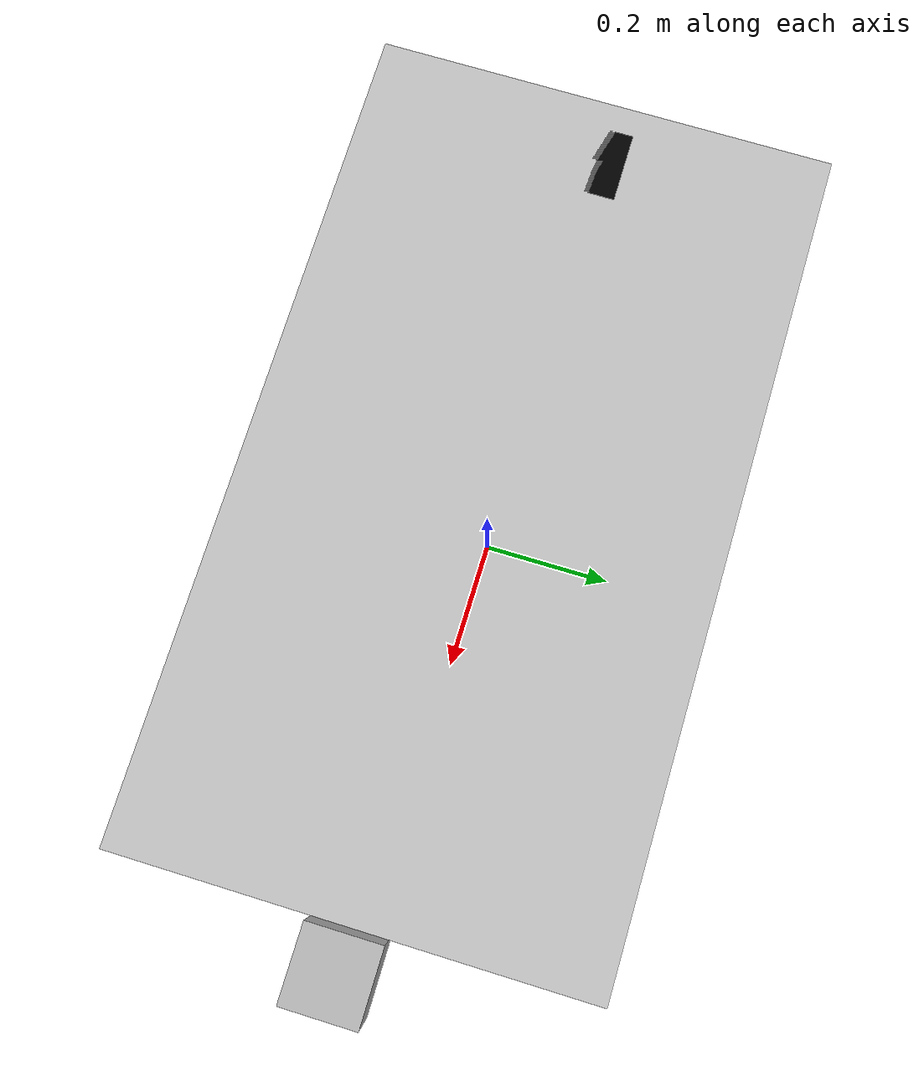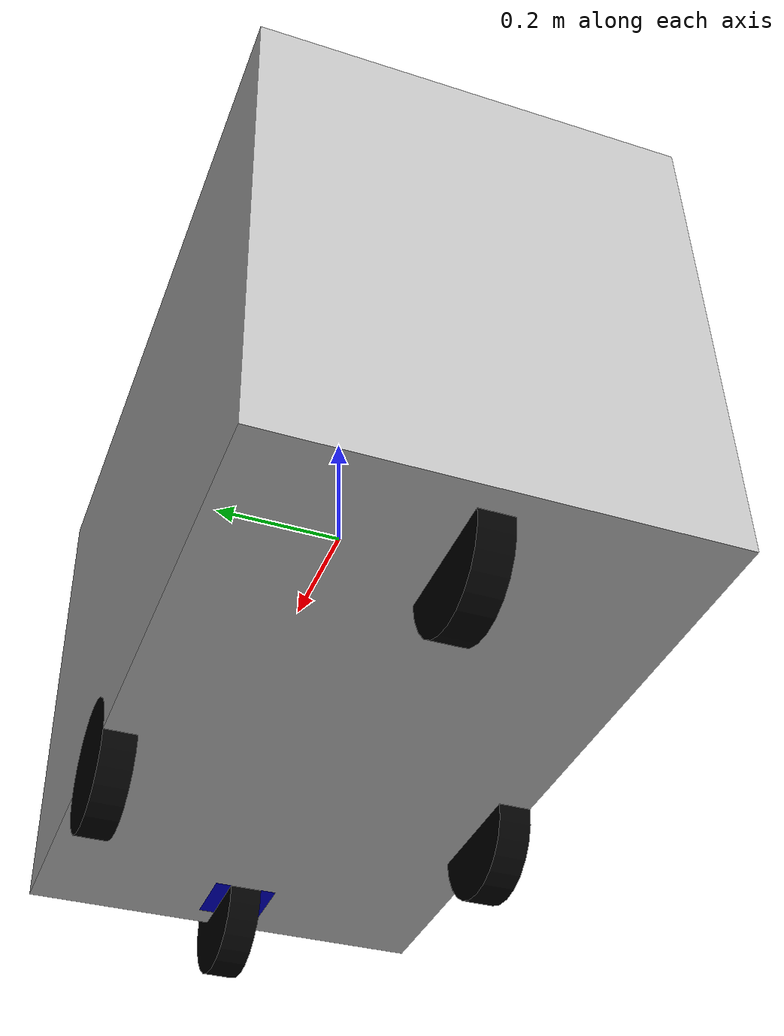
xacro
<?xml version="1.0"?>

<robot name="hermes" xmlns:xacro="http://www.ros.org/wiki/xacro">
<xacro:property name="M_PI" value="3.1415926535897931" />
<xacro:property name="M_PI2" value="-3.1415926535897931" />
 <material name="blue">
    <color rgba="0 0 0.8 1"/>
  </material>
  <material name="black">
    <color rgba="0 0 0 1"/>
  </material>

<link name="base_link">
    <inertial>
      <mass value="1.0" />
      <inertia ixx="0.015" iyy="0.0375" izz="0.0375" ixy="0" ixz="0" iyz="0" />
    </inertial>
    <visual>
      <geometry>
        <box size="1.16195 0.651 0.77596" />
      </geometry>
      <material name="blue">
        <color rgba="0.75 0.75 0.75 1" />
      </material>
    </visual>
    <collision>
      <geometry>
        <box size="0.6 0.3 0.3" />
      </geometry>
    </collision>
  </link>
<link name="back_caster">
    <inertial>
      <mass value="0.1" />
      <inertia ixx="0.00083" iyy="0.00083" izz="0.000167" ixy="0" ixz="0" iyz="0" />
    </inertial>
    <visual>
      <geometry>
        <box size="0.1 0.1 0.77596" />
      </geometry>
      <material name="black" />
    </visual>
    <collision>
      <geometry>
        <box size="0.1 0.1 0.77596" />
      </geometry>
    </collision>
  </link>
  <joint name="back_caster_joint" type="continuous">
    <axis xyz="0 0 1" />
    <parent link="base_link" />
    <child link="back_caster" />
    <origin rpy="0 0 0" xyz="-0.491695 0 0" />
  </joint>
  <link name="back_wheel">
    <inertial>
      <mass value="0.1" />
      <inertia ixx="5.1458e-5" iyy="5.1458e-5" izz="6.125e-5" ixy="0" ixz="0" iyz="0" />
    </inertial>
    <visual>
      <geometry>
        <cylinder length="0.05" radius="0.1" />
      </geometry>
      <material name="black" />
    </visual>
    <collision>
      <geometry>
        <cylinder length="0.05" radius="0.1" />
      </geometry>
    </collision>

  </link>
  <joint name="back_wheel_joint" type="continuous">
    <axis xyz="0 0 1" />
    <parent link="back_caster" />
    <child link="back_wheel" />
    <origin rpy="-1.5708 0 0" xyz="0.05 0 -.38798" />
  </joint>
  <link name="front_caster">
    <inertial>
      <mass value="0.1" />
      <inertia ixx="0.00083" iyy="0.00083" izz="0.000167" ixy="0" ixz="0" iyz="0" />
    </inertial>
    <visual>
      <geometry>
        <box size="0.1 0.1 0.77596" />
      </geometry>
      <material name="blue" />
    </visual>
    <collision>
      <geometry>
        <box size="0.1 0.1 0.77596" />
      </geometry>
    </collision>
  </link>
  <joint name="front_caster_joint" type="continuous">
    <axis xyz="0 0 1" />
    <parent link="base_link" />
    <child link="front_caster" />
    <origin rpy="0 0 0" xyz="0.491695 0 0" />
  </joint>
  <link name="front_wheel">
    <inertial>
      <mass value="0.1" />
      <inertia ixx="5.1458e-5" iyy="5.1458e-5" izz="6.125e-5" ixy="0" ixz="0" iyz="0" />
    </inertial>
    <visual>
      <geometry>
        <cylinder length="0.05" radius="0.1" />
      </geometry>
      <material name="black" />
    </visual>
    <collision>
      <geometry>
        <cylinder length="0.05" radius="0.1" />
      </geometry>
    </collision>

  </link>
  <joint name="front_wheel_joint" type="continuous">
    <axis xyz="0 0 1" />
    <parent link="front_caster" />
    <child link="front_wheel" />
    <origin rpy="-1.5708 0 0" xyz="0.05 0 -.38798" />
  </joint>
  <link name="right_wheel">
    <inertial>
      <mass value="0.1" />
      <inertia ixx="5.1458e-5" iyy="5.1458e-5" izz="6.125e-5" ixy="0" ixz="0" iyz="0" />
    </inertial>
    <visual>
      <geometry>
        <cylinder length="0.05" radius="0.1" />
      </geometry>
      <material name="black">
        <color rgba="0 0 0 1" />
      </material>
    </visual>
    <collision>
      <geometry>
        <cylinder length="0.05" radius="0.1" />
      </geometry>
    </collision>
  </link>
  <joint name="right_wheel_joint" type="continuous">
    <axis xyz="0 0 1" />
    <parent link="base_link" />
    <child link="right_wheel" />
    <origin rpy="-1.5708 0 0" xyz="0.159795 -.3005 -.38798" />
  </joint>
  <link name="left_wheel">
    <inertial>
      <mass value="0.1" />
      <inertia ixx="5.1458e-5" iyy="5.1458e-5" izz="6.125e-5" ixy="0" ixz="0" iyz="0" />
    </inertial>
    <visual>
      <geometry>
        <cylinder length="0.05" radius="0.1" />
      </geometry>
      <material name="black" />
    </visual>
    <collision>
      <geometry>
        <cylinder length="0.05" radius="0.1" />
      </geometry>
    </collision>
  </link>
  <joint name="left_wheel_joint" type="continuous">
    <axis xyz="0 0 1" />
    <parent link="base_link" />
    <child link="left_wheel" />
    <origin rpy="-1.5708 0 0" xyz="0.159795 0.3005 -.38978" />
  </joint>
  <link name="lidar_link">
    <collision>
      <origin xyz="0 0 0" rpy="0 0 0" />
      <geometry>
        <box size="0.1 0.1 0.1" />
      </geometry>
    </collision>
    <visual>
      <origin xyz="0 0 0" rpy="0 0 0" />
      <geometry>
        <box size="0.1 0.1 0.1" />
      </geometry>
    </visual>
    <inertial>
      <mass value="1e-5" />
      <origin xyz="0 0 0" rpy="0 0 0" />
      <inertia ixx="1e-6" ixy="0" ixz="0" iyy="1e-6" iyz="0" izz="1e-6" />
    </inertial>
  </link>
  <joint name="lidar_joint" type="fixed">
    <origin xyz="0.630975 0 0.4" rpy="0 0 0" />
    <parent link="base_link" />
    <child link="lidar_link" />
  </joint>
  <gazebo>
    <plugin name="differential_drive_controller" filename="libgazebo_ros_diff_drive.so">
      <leftJoint>left_wheel_joint</leftJoint>
      <odometryTopic>odom</odometryTopic>
      <odometryFrame>odom</odometryFrame>
      <publishWheelTF>false</publishWheelTF>
      <publishOdomTF>true</publishOdomTF>
      <wheelTorque>5</wheelTorque>
      <wheelAcceleration>0</wheelAcceleration>
      <updateRate>100</updateRate>
      <odometrySource>world</odometrySource> <!-- 'encoder' instead of 'world' is also possible -->
      <publishTf>1</publishTf>
      <rosDebugLevel>na</rosDebugLevel>
      <rightJoint>right_wheel_joint</rightJoint>
      <robotBaseFrame>base_link</robotBaseFrame>
      <wheelSeparation>0.25</wheelSeparation>
      <wheelDiameter>0.07</wheelDiameter>
      <publishWheelJointState>true</publishWheelJointState>
      <commandTopic>cmd_vel</commandTopic>
      <robotBaseFrame>base_link</robotBaseFrame>
    </plugin>
  </gazebo>

<gazebo reference="lidar_link">

<sensor type="ray" name="lidar_link">
          <pose>0 0 0 0 0 0</pose>
          <visualize>false</visualize>
          <update_rate>10</update_rate>
          <ray>
            <scan>
              <horizontal>
                <samples>1875</samples>
                <resolution>1</resolution>
                <min_angle>-3</min_angle>
                <max_angle>3</max_angle>
              </horizontal>
              <vertical>
                <samples>32</samples>
                <resolution>1</resolution>
                <min_angle>-0.25</min_angle>
                <max_angle>0.25</max_angle>
              </vertical>
            </scan>
            <range>
              <min>0.3</min>
              <max>131.0</max>
              <resolution>0.001</resolution>
            </range>
            <noise>
              <type>gaussian</type>
              <mean>0.0</mean>
              <stddev>0.0</stddev>
            </noise>
          </ray>
          <plugin name="gazebo_ros_laser_controller" filename="libgazebo_ros_velodyne_laser.so">
            <topicName>/velodyne</topicName>
            <frameName>lidar_link</frameName>
            <min_range>0.9</min_range>
            <max_range>130.0</max_range>
            <gaussianNoise>0.008</gaussianNoise>
          </plugin>
        </sensor>
    </gazebo>

</robot>
